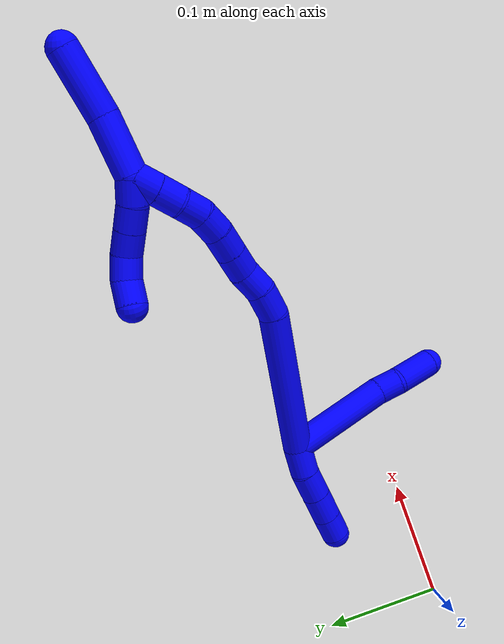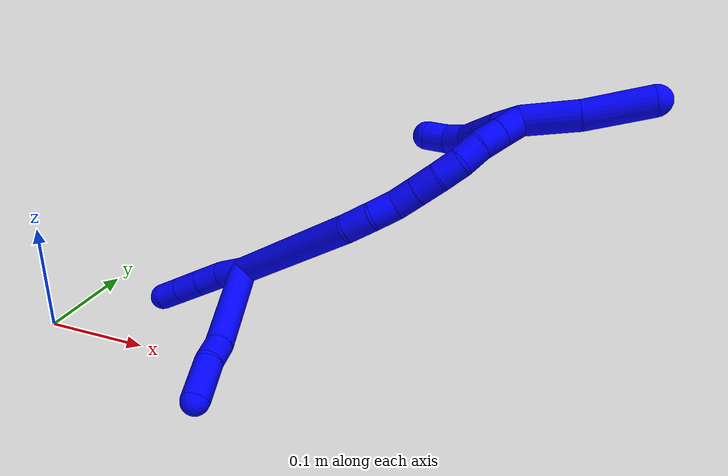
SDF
<sdf version="1.7">
 <world name="default">
  <model name="1">
   <static>0</static>
   <link name="1">
    <collision name="collision-cylinder-e_1_2_8">
     <pose>-0.027357 -0.036104 0.006701 1.38727 -0.640297 -0.537987</pose>
     <geometry><cylinder><radius>0.0125</radius><length>0.091581</length></cylinder></geometry>
     <surface>
      <friction><ode><mu>1.16</mu><mu2>1.16</mu2><slip1>0</slip1><slip2>0</slip2></ode></friction>
      <contact><ode><kp>1e+06</kp><kd>1</kd><max_vel>0</max_vel><min_depth>0.001</min_depth></ode></contact>
     </surface>
    </collision>
    <visual name="visual-cylinder-e_1_2_8">
     <pose>-0.027357 -0.036104 0.006701 1.38727 -0.640297 -0.537987</pose>
     <geometry><cylinder><radius>0.0125</radius><length>0.091581</length></cylinder></geometry>
     <material><ambient>0 0 1 1</ambient></material>
    </visual>
    <collision name="collision-cylinder-e_2_8_9">
     <pose>-0.062569 -0.07909 0.01493 1.3524 -0.839386 -0.687626</pose>
     <geometry><cylinder><radius>0.0125</radius><length>0.021111</length></cylinder></geometry>
     <surface>
      <friction><ode><mu>1.16</mu><mu2>1.16</mu2><slip1>0</slip1><slip2>0</slip2></ode></friction>
      <contact><ode><kp>1e+06</kp><kd>1</kd><max_vel>0</max_vel><min_depth>0.001</min_depth></ode></contact>
     </surface>
    </collision>
    <visual name="visual-cylinder-e_2_8_9">
     <pose>-0.062569 -0.07909 0.01493 1.3524 -0.839386 -0.687626</pose>
     <geometry><cylinder><radius>0.0125</radius><length>0.021111</length></cylinder></geometry>
     <material><ambient>0 0 1 1</ambient></material>
    </visual>
    <collision name="collision-cylinder-e_3_9_6">
     <pose>-0.080816 -0.10146 0.016842 1.54601 -0.590805 -0.577138</pose>
     <geometry><cylinder><radius>0.0125</radius><length>0.037308</length></cylinder></geometry>
     <surface>
      <friction><ode><mu>1.16</mu><mu2>1.16</mu2><slip1>0</slip1><slip2>0</slip2></ode></friction>
      <contact><ode><kp>1e+06</kp><kd>1</kd><max_vel>0</max_vel><min_depth>0.001</min_depth></ode></contact>
     </surface>
    </collision>
    <visual name="visual-cylinder-e_3_9_6">
     <pose>-0.080816 -0.10146 0.016842 1.54601 -0.590805 -0.577138</pose>
     <geometry><cylinder><radius>0.0125</radius><length>0.037308</length></cylinder></geometry>
     <material><ambient>0 0 1 1</ambient></material>
    </visual>
    <collision name="collision-cylinder-e_1_2_10">
     <pose>-0.002086 0.001764 -0.012606 -3.00256 -0.162398 1.72609</pose>
     <geometry><cylinder><radius>0.0125</radius><length>0.025798</length></cylinder></geometry>
     <surface>
      <friction><ode><mu>1.16</mu><mu2>1.16</mu2><slip1>0</slip1><slip2>0</slip2></ode></friction>
      <contact><ode><kp>1e+06</kp><kd>1</kd><max_vel>0</max_vel><min_depth>0.001</min_depth></ode></contact>
     </surface>
    </collision>
    <visual name="visual-cylinder-e_1_2_10">
     <pose>-0.002086 0.001764 -0.012606 -3.00256 -0.162398 1.72609</pose>
     <geometry><cylinder><radius>0.0125</radius><length>0.025798</length></cylinder></geometry>
     <material><ambient>0 0 1 1</ambient></material>
    </visual>
    <collision name="collision-cylinder-e_2_10_11">
     <pose>-0.007372 0.003135 -0.037738 3.11022 -0.250042 -2.89321</pose>
     <geometry><cylinder><radius>0.0125</radius><length>0.025868</length></cylinder></geometry>
     <surface>
      <friction><ode><mu>1.16</mu><mu2>1.16</mu2><slip1>0</slip1><slip2>0</slip2></ode></friction>
      <contact><ode><kp>1e+06</kp><kd>1</kd><max_vel>0</max_vel><min_depth>0.001</min_depth></ode></contact>
     </surface>
    </collision>
    <visual name="visual-cylinder-e_2_10_11">
     <pose>-0.007372 0.003135 -0.037738 3.11022 -0.250042 -2.89321</pose>
     <geometry><cylinder><radius>0.0125</radius><length>0.025868</length></cylinder></geometry>
     <material><ambient>0 0 1 1</ambient></material>
    </visual>
    <collision name="collision-cylinder-e_3_11_12">
     <pose>-0.013642 0.002304 -0.062602 3.10612 -0.243708 -2.85392</pose>
     <geometry><cylinder><radius>0.0125</radius><length>0.025444</length></cylinder></geometry>
     <surface>
      <friction><ode><mu>1.16</mu><mu2>1.16</mu2><slip1>0</slip1><slip2>0</slip2></ode></friction>
      <contact><ode><kp>1e+06</kp><kd>1</kd><max_vel>0</max_vel><min_depth>0.001</min_depth></ode></contact>
     </surface>
    </collision>
    <visual name="visual-cylinder-e_3_11_12">
     <pose>-0.013642 0.002304 -0.062602 3.10612 -0.243708 -2.85392</pose>
     <geometry><cylinder><radius>0.0125</radius><length>0.025444</length></cylinder></geometry>
     <material><ambient>0 0 1 1</ambient></material>
    </visual>
    <collision name="collision-cylinder-e_4_12_5">
     <pose>-0.019524 0.001511 -0.086029 3.10959 -0.24826 -2.88648</pose>
     <geometry><cylinder><radius>0.0125</radius><length>0.02289</length></cylinder></geometry>
     <surface>
      <friction><ode><mu>1.16</mu><mu2>1.16</mu2><slip1>0</slip1><slip2>0</slip2></ode></friction>
      <contact><ode><kp>1e+06</kp><kd>1</kd><max_vel>0</max_vel><min_depth>0.001</min_depth></ode></contact>
     </surface>
    </collision>
    <visual name="visual-cylinder-e_4_12_5">
     <pose>-0.019524 0.001511 -0.086029 3.10959 -0.24826 -2.88648</pose>
     <geometry><cylinder><radius>0.0125</radius><length>0.02289</length></cylinder></geometry>
     <material><ambient>0 0 1 1</ambient></material>
    </visual>
    <collision name="collision-cylinder-e_1_2_13">
     <pose>0.000268 -0.001428 0.066058 0.021621 0.004062 4.4e-05</pose>
     <geometry><cylinder><radius>0.0125</radius><length>0.132147</length></cylinder></geometry>
     <surface>
      <friction><ode><mu>1.16</mu><mu2>1.16</mu2><slip1>0</slip1><slip2>0</slip2></ode></friction>
      <contact><ode><kp>1e+06</kp><kd>1</kd><max_vel>0</max_vel><min_depth>0.001</min_depth></ode></contact>
     </surface>
    </collision>
    <visual name="visual-cylinder-e_1_2_13">
     <pose>0.000268 -0.001428 0.066058 0.021621 0.004062 4.4e-05</pose>
     <geometry><cylinder><radius>0.0125</radius><length>0.132147</length></cylinder></geometry>
     <material><ambient>0 0 1 1</ambient></material>
    </visual>
    <collision name="collision-cylinder-e_2_13_14">
     <pose>0.003563 -0.001447 0.143964 -0.118444 0.248339 -0.0148</pose>
     <geometry><cylinder><radius>0.0125</radius><length>0.024621</length></cylinder></geometry>
     <surface>
      <friction><ode><mu>1.16</mu><mu2>1.16</mu2><slip1>0</slip1><slip2>0</slip2></ode></friction>
      <contact><ode><kp>1e+06</kp><kd>1</kd><max_vel>0</max_vel><min_depth>0.001</min_depth></ode></contact>
     </surface>
    </collision>
    <visual name="visual-cylinder-e_2_13_14">
     <pose>0.003563 -0.001447 0.143964 -0.118444 0.248339 -0.0148</pose>
     <geometry><cylinder><radius>0.0125</radius><length>0.024621</length></cylinder></geometry>
     <material><ambient>0 0 1 1</ambient></material>
    </visual>
    <collision name="collision-cylinder-e_3_14_15">
     <pose>0.011496 0.002131 0.165071 -0.230009 0.476494 -0.056093</pose>
     <geometry><cylinder><radius>0.0125</radius><length>0.021399</length></cylinder></geometry>
     <surface>
      <friction><ode><mu>1.16</mu><mu2>1.16</mu2><slip1>0</slip1><slip2>0</slip2></ode></friction>
      <contact><ode><kp>1e+06</kp><kd>1</kd><max_vel>0</max_vel><min_depth>0.001</min_depth></ode></contact>
     </surface>
    </collision>
    <visual name="visual-cylinder-e_3_14_15">
     <pose>0.011496 0.002131 0.165071 -0.230009 0.476494 -0.056093</pose>
     <geometry><cylinder><radius>0.0125</radius><length>0.021399</length></cylinder></geometry>
     <material><ambient>0 0 1 1</ambient></material>
    </visual>
    <collision name="collision-cylinder-e_4_15_16">
     <pose>0.018818 0.006803 0.184102 -0.250842 0.234924 -0.029755</pose>
     <geometry><cylinder><radius>0.0125</radius><length>0.020747</length></cylinder></geometry>
     <surface>
      <friction><ode><mu>1.16</mu><mu2>1.16</mu2><slip1>0</slip1><slip2>0</slip2></ode></friction>
      <contact><ode><kp>1e+06</kp><kd>1</kd><max_vel>0</max_vel><min_depth>0.001</min_depth></ode></contact>
     </surface>
    </collision>
    <visual name="visual-cylinder-e_4_15_16">
     <pose>0.018818 0.006803 0.184102 -0.250842 0.234924 -0.029755</pose>
     <geometry><cylinder><radius>0.0125</radius><length>0.020747</length></cylinder></geometry>
     <material><ambient>0 0 1 1</ambient></material>
    </visual>
    <collision name="collision-cylinder-e_5_16_17">
     <pose>0.023663 0.011866 0.203685 -0.255135 0.235254 -0.030312</pose>
     <geometry><cylinder><radius>0.0125</radius><length>0.020851</length></cylinder></geometry>
     <surface>
      <friction><ode><mu>1.16</mu><mu2>1.16</mu2><slip1>0</slip1><slip2>0</slip2></ode></friction>
      <contact><ode><kp>1e+06</kp><kd>1</kd><max_vel>0</max_vel><min_depth>0.001</min_depth></ode></contact>
     </surface>
    </collision>
    <visual name="visual-cylinder-e_5_16_17">
     <pose>0.023663 0.011866 0.203685 -0.255135 0.235254 -0.030312</pose>
     <geometry><cylinder><radius>0.0125</radius><length>0.020851</length></cylinder></geometry>
     <material><ambient>0 0 1 1</ambient></material>
    </visual>
    <collision name="collision-cylinder-e_6_17_18">
     <pose>0.02971 0.017636 0.222339 -0.348317 0.366944 -0.065272</pose>
     <geometry><cylinder><radius>0.0125</radius><length>0.020161</length></cylinder></geometry>
     <surface>
      <friction><ode><mu>1.16</mu><mu2>1.16</mu2><slip1>0</slip1><slip2>0</slip2></ode></friction>
      <contact><ode><kp>1e+06</kp><kd>1</kd><max_vel>0</max_vel><min_depth>0.001</min_depth></ode></contact>
     </surface>
    </collision>
    <visual name="visual-cylinder-e_6_17_18">
     <pose>0.02971 0.017636 0.222339 -0.348317 0.366944 -0.065272</pose>
     <geometry><cylinder><radius>0.0125</radius><length>0.020161</length></cylinder></geometry>
     <material><ambient>0 0 1 1</ambient></material>
    </visual>
    <collision name="collision-cylinder-e_7_18_19">
     <pose>0.038358 0.025764 0.238324 -0.603053 0.525936 -0.167059</pose>
     <geometry><cylinder><radius>0.0125</radius><length>0.020047</length></cylinder></geometry>
     <surface>
      <friction><ode><mu>1.16</mu><mu2>1.16</mu2><slip1>0</slip1><slip2>0</slip2></ode></friction>
      <contact><ode><kp>1e+06</kp><kd>1</kd><max_vel>0</max_vel><min_depth>0.001</min_depth></ode></contact>
     </surface>
    </collision>
    <visual name="visual-cylinder-e_7_18_19">
     <pose>0.038358 0.025764 0.238324 -0.603053 0.525936 -0.167059</pose>
     <geometry><cylinder><radius>0.0125</radius><length>0.020047</length></cylinder></geometry>
     <material><ambient>0 0 1 1</ambient></material>
    </visual>
    <collision name="collision-cylinder-e_8_19_20">
     <pose>0.04972 0.034389 0.252262 -0.499262 0.685272 -0.181385</pose>
     <geometry><cylinder><radius>0.0125</radius><length>0.020003</length></cylinder></geometry>
     <surface>
      <friction><ode><mu>1.16</mu><mu2>1.16</mu2><slip1>0</slip1><slip2>0</slip2></ode></friction>
      <contact><ode><kp>1e+06</kp><kd>1</kd><max_vel>0</max_vel><min_depth>0.001</min_depth></ode></contact>
     </surface>
    </collision>
    <visual name="visual-cylinder-e_8_19_20">
     <pose>0.04972 0.034389 0.252262 -0.499262 0.685272 -0.181385</pose>
     <geometry><cylinder><radius>0.0125</radius><length>0.020003</length></cylinder></geometry>
     <material><ambient>0 0 1 1</ambient></material>
    </visual>
    <collision name="collision-cylinder-e_9_20_1">
     <pose>0.062547 0.041728 0.265756 -0.496979 0.706198 -0.186482</pose>
     <geometry><cylinder><radius>0.0125</radius><length>0.020022</length></cylinder></geometry>
     <surface>
      <friction><ode><mu>1.16</mu><mu2>1.16</mu2><slip1>0</slip1><slip2>0</slip2></ode></friction>
      <contact><ode><kp>1e+06</kp><kd>1</kd><max_vel>0</max_vel><min_depth>0.001</min_depth></ode></contact>
     </surface>
    </collision>
    <visual name="visual-cylinder-e_9_20_1">
     <pose>0.062547 0.041728 0.265756 -0.496979 0.706198 -0.186482</pose>
     <geometry><cylinder><radius>0.0125</radius><length>0.020022</length></cylinder></geometry>
     <material><ambient>0 0 1 1</ambient></material>
    </visual>
    <collision name="collision-cylinder-e_1_1_21">
     <pose>0.077744 0.040009 0.293123 0.253266 0.386901 0.049871</pose>
     <geometry><cylinder><radius>0.0125</radius><length>0.046115</length></cylinder></geometry>
     <surface>
      <friction><ode><mu>1.16</mu><mu2>1.16</mu2><slip1>0</slip1><slip2>0</slip2></ode></friction>
      <contact><ode><kp>1e+06</kp><kd>1</kd><max_vel>0</max_vel><min_depth>0.001</min_depth></ode></contact>
     </surface>
    </collision>
    <visual name="visual-cylinder-e_1_1_21">
     <pose>0.077744 0.040009 0.293123 0.253266 0.386901 0.049871</pose>
     <geometry><cylinder><radius>0.0125</radius><length>0.046115</length></cylinder></geometry>
     <material><ambient>0 0 1 1</ambient></material>
    </visual>
    <collision name="collision-cylinder-e_2_21_4">
     <pose>0.097573 0.031846 0.33817 0.11488 0.425846 0.024863</pose>
     <geometry><cylinder><radius>0.0125</radius><length>0.053885</length></cylinder></geometry>
     <surface>
      <friction><ode><mu>1.16</mu><mu2>1.16</mu2><slip1>0</slip1><slip2>0</slip2></ode></friction>
      <contact><ode><kp>1e+06</kp><kd>1</kd><max_vel>0</max_vel><min_depth>0.001</min_depth></ode></contact>
     </surface>
    </collision>
    <visual name="visual-cylinder-e_2_21_4">
     <pose>0.097573 0.031846 0.33817 0.11488 0.425846 0.024863</pose>
     <geometry><cylinder><radius>0.0125</radius><length>0.053885</length></cylinder></geometry>
     <material><ambient>0 0 1 1</ambient></material>
    </visual>
    <collision name="collision-cylinder-e_1_1_22">
     <pose>0.070243 0.047265 0.262708 -2.94839 0.120201 -1.11139</pose>
     <geometry><cylinder><radius>0.0125</radius><length>0.02</length></cylinder></geometry>
     <surface>
      <friction><ode><mu>1.16</mu><mu2>1.16</mu2><slip1>0</slip1><slip2>0</slip2></ode></friction>
      <contact><ode><kp>1e+06</kp><kd>1</kd><max_vel>0</max_vel><min_depth>0.001</min_depth></ode></contact>
     </surface>
    </collision>
    <visual name="visual-cylinder-e_1_1_22">
     <pose>0.070243 0.047265 0.262708 -2.94839 0.120201 -1.11139</pose>
     <geometry><cylinder><radius>0.0125</radius><length>0.02</length></cylinder></geometry>
     <material><ambient>0 0 1 1</ambient></material>
    </visual>
    <collision name="collision-cylinder-e_2_22_23">
     <pose>0.074361 0.050989 0.243575 -2.9504 0.296207 -1.99914</pose>
     <geometry><cylinder><radius>0.0125</radius><length>0.02</length></cylinder></geometry>
     <surface>
      <friction><ode><mu>1.16</mu><mu2>1.16</mu2><slip1>0</slip1><slip2>0</slip2></ode></friction>
      <contact><ode><kp>1e+06</kp><kd>1</kd><max_vel>0</max_vel><min_depth>0.001</min_depth></ode></contact>
     </surface>
    </collision>
    <visual name="visual-cylinder-e_2_22_23">
     <pose>0.074361 0.050989 0.243575 -2.9504 0.296207 -1.99914</pose>
     <geometry><cylinder><radius>0.0125</radius><length>0.02</length></cylinder></geometry>
     <material><ambient>0 0 1 1</ambient></material>
    </visual>
    <collision name="collision-cylinder-e_3_23_24">
     <pose>0.080249 0.054622 0.22481 -2.95027 0.301471 -2.01471</pose>
     <geometry><cylinder><radius>0.0125</radius><length>0.02</length></cylinder></geometry>
     <surface>
      <friction><ode><mu>1.16</mu><mu2>1.16</mu2><slip1>0</slip1><slip2>0</slip2></ode></friction>
      <contact><ode><kp>1e+06</kp><kd>1</kd><max_vel>0</max_vel><min_depth>0.001</min_depth></ode></contact>
     </surface>
    </collision>
    <visual name="visual-cylinder-e_3_23_24">
     <pose>0.080249 0.054622 0.22481 -2.95027 0.301471 -2.01471</pose>
     <geometry><cylinder><radius>0.0125</radius><length>0.02</length></cylinder></geometry>
     <material><ambient>0 0 1 1</ambient></material>
    </visual>
    <collision name="collision-cylinder-e_4_24_25">
     <pose>0.083628 0.060484 0.206299 -2.72469 0.040989 -0.193202</pose>
     <geometry><cylinder><radius>0.0125</radius><length>0.02</length></cylinder></geometry>
     <surface>
      <friction><ode><mu>1.16</mu><mu2>1.16</mu2><slip1>0</slip1><slip2>0</slip2></ode></friction>
      <contact><ode><kp>1e+06</kp><kd>1</kd><max_vel>0</max_vel><min_depth>0.001</min_depth></ode></contact>
     </surface>
    </collision>
    <visual name="visual-cylinder-e_4_24_25">
     <pose>0.083628 0.060484 0.206299 -2.72469 0.040989 -0.193202</pose>
     <geometry><cylinder><radius>0.0125</radius><length>0.02</length></cylinder></geometry>
     <material><ambient>0 0 1 1</ambient></material>
    </visual>
    <collision name="collision-cylinder-e_5_25_3">
     <pose>0.081354 0.069393 0.188848 -2.61242 -0.271746 0.934641</pose>
     <geometry><cylinder><radius>0.0125</radius><length>0.02</length></cylinder></geometry>
     <surface>
      <friction><ode><mu>1.16</mu><mu2>1.16</mu2><slip1>0</slip1><slip2>0</slip2></ode></friction>
      <contact><ode><kp>1e+06</kp><kd>1</kd><max_vel>0</max_vel><min_depth>0.001</min_depth></ode></contact>
     </surface>
    </collision>
    <visual name="visual-cylinder-e_5_25_3">
     <pose>0.081354 0.069393 0.188848 -2.61242 -0.271746 0.934641</pose>
     <geometry><cylinder><radius>0.0125</radius><length>0.02</length></cylinder></geometry>
     <material><ambient>0 0 1 1</ambient></material>
    </visual>
    <collision name="collision-sphere-3">
     <pose>0.07867 0.074256 0.180532 0 -0 0</pose>
     <geometry><sphere><radius>0.0125</radius></sphere></geometry>
     <surface>
      <friction><ode><mu>1.16</mu><mu2>1.16</mu2><slip1>0</slip1><slip2>0</slip2></ode></friction>
      <contact><ode><kp>1e+06</kp><kd>1</kd><max_vel>0</max_vel><min_depth>0.001</min_depth></ode></contact>
     </surface>
    </collision>
    <visual name="visual-sphere-3">
     <pose>0.07867 0.074256 0.180532 0 -0 0</pose>
     <geometry><sphere><radius>0.0125</radius></sphere></geometry>
     <material><ambient>0 0 1 1</ambient></material>
    </visual>
    <collision name="collision-sphere-25">
     <pose>0.084038 0.06453 0.197163 0 -0 0</pose>
     <geometry><sphere><radius>0.0125</radius></sphere></geometry>
     <surface>
      <friction><ode><mu>1.16</mu><mu2>1.16</mu2><slip1>0</slip1><slip2>0</slip2></ode></friction>
      <contact><ode><kp>1e+06</kp><kd>1</kd><max_vel>0</max_vel><min_depth>0.001</min_depth></ode></contact>
     </surface>
    </collision>
    <visual name="visual-sphere-25">
     <pose>0.084038 0.06453 0.197163 0 -0 0</pose>
     <geometry><sphere><radius>0.0125</radius></sphere></geometry>
     <material><ambient>0 0 1 1</ambient></material>
    </visual>
    <collision name="collision-sphere-24">
     <pose>0.083218 0.056438 0.215435 0 -0 0</pose>
     <geometry><sphere><radius>0.0125</radius></sphere></geometry>
     <surface>
      <friction><ode><mu>1.16</mu><mu2>1.16</mu2><slip1>0</slip1><slip2>0</slip2></ode></friction>
      <contact><ode><kp>1e+06</kp><kd>1</kd><max_vel>0</max_vel><min_depth>0.001</min_depth></ode></contact>
     </surface>
    </collision>
    <visual name="visual-sphere-24">
     <pose>0.083218 0.056438 0.215435 0 -0 0</pose>
     <geometry><sphere><radius>0.0125</radius></sphere></geometry>
     <material><ambient>0 0 1 1</ambient></material>
    </visual>
    <collision name="collision-sphere-23">
     <pose>0.07728 0.052806 0.234185 0 -0 0</pose>
     <geometry><sphere><radius>0.0125</radius></sphere></geometry>
     <surface>
      <friction><ode><mu>1.16</mu><mu2>1.16</mu2><slip1>0</slip1><slip2>0</slip2></ode></friction>
      <contact><ode><kp>1e+06</kp><kd>1</kd><max_vel>0</max_vel><min_depth>0.001</min_depth></ode></contact>
     </surface>
    </collision>
    <visual name="visual-sphere-23">
     <pose>0.07728 0.052806 0.234185 0 -0 0</pose>
     <geometry><sphere><radius>0.0125</radius></sphere></geometry>
     <material><ambient>0 0 1 1</ambient></material>
    </visual>
    <collision name="collision-sphere-22">
     <pose>0.071442 0.049171 0.252965 0 -0 0</pose>
     <geometry><sphere><radius>0.0125</radius></sphere></geometry>
     <surface>
      <friction><ode><mu>1.16</mu><mu2>1.16</mu2><slip1>0</slip1><slip2>0</slip2></ode></friction>
      <contact><ode><kp>1e+06</kp><kd>1</kd><max_vel>0</max_vel><min_depth>0.001</min_depth></ode></contact>
     </surface>
    </collision>
    <visual name="visual-sphere-22">
     <pose>0.071442 0.049171 0.252965 0 -0 0</pose>
     <geometry><sphere><radius>0.0125</radius></sphere></geometry>
     <material><ambient>0 0 1 1</ambient></material>
    </visual>
    <collision name="collision-sphere-4">
     <pose>0.108703 0.029033 0.362544 0 -0 0</pose>
     <geometry><sphere><radius>0.0125</radius></sphere></geometry>
     <surface>
      <friction><ode><mu>1.16</mu><mu2>1.16</mu2><slip1>0</slip1><slip2>0</slip2></ode></friction>
      <contact><ode><kp>1e+06</kp><kd>1</kd><max_vel>0</max_vel><min_depth>0.001</min_depth></ode></contact>
     </surface>
    </collision>
    <visual name="visual-sphere-4">
     <pose>0.108703 0.029033 0.362544 0 -0 0</pose>
     <geometry><sphere><radius>0.0125</radius></sphere></geometry>
     <material><ambient>0 0 1 1</ambient></material>
    </visual>
    <collision name="collision-sphere-21">
     <pose>0.086444 0.034658 0.313795 0 -0 0</pose>
     <geometry><sphere><radius>0.0125</radius></sphere></geometry>
     <surface>
      <friction><ode><mu>1.16</mu><mu2>1.16</mu2><slip1>0</slip1><slip2>0</slip2></ode></friction>
      <contact><ode><kp>1e+06</kp><kd>1</kd><max_vel>0</max_vel><min_depth>0.001</min_depth></ode></contact>
     </surface>
    </collision>
    <visual name="visual-sphere-21">
     <pose>0.086444 0.034658 0.313795 0 -0 0</pose>
     <geometry><sphere><radius>0.0125</radius></sphere></geometry>
     <material><ambient>0 0 1 1</ambient></material>
    </visual>
    <collision name="collision-sphere-1">
     <pose>0.069044 0.045359 0.272451 0 -0 0</pose>
     <geometry><sphere><radius>0.0125</radius></sphere></geometry>
     <surface>
      <friction><ode><mu>1.16</mu><mu2>1.16</mu2><slip1>0</slip1><slip2>0</slip2></ode></friction>
      <contact><ode><kp>1e+06</kp><kd>1</kd><max_vel>0</max_vel><min_depth>0.001</min_depth></ode></contact>
     </surface>
    </collision>
    <visual name="visual-sphere-1">
     <pose>0.069044 0.045359 0.272451 0 -0 0</pose>
     <geometry><sphere><radius>0.0125</radius></sphere></geometry>
     <material><ambient>0 0 1 1</ambient></material>
    </visual>
    <collision name="collision-sphere-11">
     <pose>-0.010572 0.002742 -0.050264 0 -0 0</pose>
     <geometry><sphere><radius>0.0125</radius></sphere></geometry>
     <surface>
      <friction><ode><mu>1.16</mu><mu2>1.16</mu2><slip1>0</slip1><slip2>0</slip2></ode></friction>
      <contact><ode><kp>1e+06</kp><kd>1</kd><max_vel>0</max_vel><min_depth>0.001</min_depth></ode></contact>
     </surface>
    </collision>
    <visual name="visual-sphere-11">
     <pose>-0.010572 0.002742 -0.050264 0 -0 0</pose>
     <geometry><sphere><radius>0.0125</radius></sphere></geometry>
     <material><ambient>0 0 1 1</ambient></material>
    </visual>
    <collision name="collision-sphere-10">
     <pose>-0.004171 0.003528 -0.025213 0 -0 0</pose>
     <geometry><sphere><radius>0.0125</radius></sphere></geometry>
     <surface>
      <friction><ode><mu>1.16</mu><mu2>1.16</mu2><slip1>0</slip1><slip2>0</slip2></ode></friction>
      <contact><ode><kp>1e+06</kp><kd>1</kd><max_vel>0</max_vel><min_depth>0.001</min_depth></ode></contact>
     </surface>
    </collision>
    <visual name="visual-sphere-10">
     <pose>-0.004171 0.003528 -0.025213 0 -0 0</pose>
     <geometry><sphere><radius>0.0125</radius></sphere></geometry>
     <material><ambient>0 0 1 1</ambient></material>
    </visual>
    <collision name="collision-sphere-6">
     <pose>-0.091207 -0.116947 0.017226 0 -0 0</pose>
     <geometry><sphere><radius>0.0125</radius></sphere></geometry>
     <surface>
      <friction><ode><mu>1.16</mu><mu2>1.16</mu2><slip1>0</slip1><slip2>0</slip2></ode></friction>
      <contact><ode><kp>1e+06</kp><kd>1</kd><max_vel>0</max_vel><min_depth>0.001</min_depth></ode></contact>
     </surface>
    </collision>
    <visual name="visual-sphere-6">
     <pose>-0.091207 -0.116947 0.017226 0 -0 0</pose>
     <geometry><sphere><radius>0.0125</radius></sphere></geometry>
     <material><ambient>0 0 1 1</ambient></material>
    </visual>
    <collision name="collision-sphere-9">
     <pose>-0.070425 -0.085973 0.016458 0 -0 0</pose>
     <geometry><sphere><radius>0.0125</radius></sphere></geometry>
     <surface>
      <friction><ode><mu>1.16</mu><mu2>1.16</mu2><slip1>0</slip1><slip2>0</slip2></ode></friction>
      <contact><ode><kp>1e+06</kp><kd>1</kd><max_vel>0</max_vel><min_depth>0.001</min_depth></ode></contact>
     </surface>
    </collision>
    <visual name="visual-sphere-9">
     <pose>-0.070425 -0.085973 0.016458 0 -0 0</pose>
     <geometry><sphere><radius>0.0125</radius></sphere></geometry>
     <material><ambient>0 0 1 1</ambient></material>
    </visual>
    <collision name="collision-sphere-2">
     <geometry><sphere><radius>0.0125</radius></sphere></geometry>
     <surface>
      <friction><ode><mu>1.16</mu><mu2>1.16</mu2><slip1>0</slip1><slip2>0</slip2></ode></friction>
      <contact><ode><kp>1e+06</kp><kd>1</kd><max_vel>0</max_vel><min_depth>0.001</min_depth></ode></contact>
     </surface>
    </collision>
    <visual name="visual-sphere-2">
     <geometry><sphere><radius>0.0125</radius></sphere></geometry>
     <material><ambient>0 0 1 1</ambient></material>
    </visual>
    <collision name="collision-sphere-19">
     <pose>0.043391 0.030681 0.245464 0 -0 0</pose>
     <geometry><sphere><radius>0.0125</radius></sphere></geometry>
     <surface>
      <friction><ode><mu>1.16</mu><mu2>1.16</mu2><slip1>0</slip1><slip2>0</slip2></ode></friction>
      <contact><ode><kp>1e+06</kp><kd>1</kd><max_vel>0</max_vel><min_depth>0.001</min_depth></ode></contact>
     </surface>
    </collision>
    <visual name="visual-sphere-19">
     <pose>0.043391 0.030681 0.245464 0 -0 0</pose>
     <geometry><sphere><radius>0.0125</radius></sphere></geometry>
     <material><ambient>0 0 1 1</ambient></material>
    </visual>
    <collision name="collision-sphere-8">
     <pose>-0.054714 -0.072207 0.013403 0 -0 0</pose>
     <geometry><sphere><radius>0.0125</radius></sphere></geometry>
     <surface>
      <friction><ode><mu>1.16</mu><mu2>1.16</mu2><slip1>0</slip1><slip2>0</slip2></ode></friction>
      <contact><ode><kp>1e+06</kp><kd>1</kd><max_vel>0</max_vel><min_depth>0.001</min_depth></ode></contact>
     </surface>
    </collision>
    <visual name="visual-sphere-8">
     <pose>-0.054714 -0.072207 0.013403 0 -0 0</pose>
     <geometry><sphere><radius>0.0125</radius></sphere></geometry>
     <material><ambient>0 0 1 1</ambient></material>
    </visual>
    <collision name="collision-sphere-12">
     <pose>-0.016712 0.001866 -0.074941 0 -0 0</pose>
     <geometry><sphere><radius>0.0125</radius></sphere></geometry>
     <surface>
      <friction><ode><mu>1.16</mu><mu2>1.16</mu2><slip1>0</slip1><slip2>0</slip2></ode></friction>
      <contact><ode><kp>1e+06</kp><kd>1</kd><max_vel>0</max_vel><min_depth>0.001</min_depth></ode></contact>
     </surface>
    </collision>
    <visual name="visual-sphere-12">
     <pose>-0.016712 0.001866 -0.074941 0 -0 0</pose>
     <geometry><sphere><radius>0.0125</radius></sphere></geometry>
     <material><ambient>0 0 1 1</ambient></material>
    </visual>
    <collision name="collision-sphere-5">
     <pose>-0.022336 0.001156 -0.097118 0 -0 0</pose>
     <geometry><sphere><radius>0.0125</radius></sphere></geometry>
     <surface>
      <friction><ode><mu>1.16</mu><mu2>1.16</mu2><slip1>0</slip1><slip2>0</slip2></ode></friction>
      <contact><ode><kp>1e+06</kp><kd>1</kd><max_vel>0</max_vel><min_depth>0.001</min_depth></ode></contact>
     </surface>
    </collision>
    <visual name="visual-sphere-5">
     <pose>-0.022336 0.001156 -0.097118 0 -0 0</pose>
     <geometry><sphere><radius>0.0125</radius></sphere></geometry>
     <material><ambient>0 0 1 1</ambient></material>
    </visual>
    <collision name="collision-sphere-13">
     <pose>0.000537 -0.002857 0.132115 0 -0 0</pose>
     <geometry><sphere><radius>0.0125</radius></sphere></geometry>
     <surface>
      <friction><ode><mu>1.16</mu><mu2>1.16</mu2><slip1>0</slip1><slip2>0</slip2></ode></friction>
      <contact><ode><kp>1e+06</kp><kd>1</kd><max_vel>0</max_vel><min_depth>0.001</min_depth></ode></contact>
     </surface>
    </collision>
    <visual name="visual-sphere-13">
     <pose>0.000537 -0.002857 0.132115 0 -0 0</pose>
     <geometry><sphere><radius>0.0125</radius></sphere></geometry>
     <material><ambient>0 0 1 1</ambient></material>
    </visual>
    <collision name="collision-sphere-14">
     <pose>0.006589 -3.7e-05 0.155814 0 -0 0</pose>
     <geometry><sphere><radius>0.0125</radius></sphere></geometry>
     <surface>
      <friction><ode><mu>1.16</mu><mu2>1.16</mu2><slip1>0</slip1><slip2>0</slip2></ode></friction>
      <contact><ode><kp>1e+06</kp><kd>1</kd><max_vel>0</max_vel><min_depth>0.001</min_depth></ode></contact>
     </surface>
    </collision>
    <visual name="visual-sphere-14">
     <pose>0.006589 -3.7e-05 0.155814 0 -0 0</pose>
     <geometry><sphere><radius>0.0125</radius></sphere></geometry>
     <material><ambient>0 0 1 1</ambient></material>
    </visual>
    <collision name="collision-sphere-15">
     <pose>0.016404 0.004299 0.174329 0 -0 0</pose>
     <geometry><sphere><radius>0.0125</radius></sphere></geometry>
     <surface>
      <friction><ode><mu>1.16</mu><mu2>1.16</mu2><slip1>0</slip1><slip2>0</slip2></ode></friction>
      <contact><ode><kp>1e+06</kp><kd>1</kd><max_vel>0</max_vel><min_depth>0.001</min_depth></ode></contact>
     </surface>
    </collision>
    <visual name="visual-sphere-15">
     <pose>0.016404 0.004299 0.174329 0 -0 0</pose>
     <geometry><sphere><radius>0.0125</radius></sphere></geometry>
     <material><ambient>0 0 1 1</ambient></material>
    </visual>
    <collision name="collision-sphere-16">
     <pose>0.021233 0.009307 0.193874 0 -0 0</pose>
     <geometry><sphere><radius>0.0125</radius></sphere></geometry>
     <surface>
      <friction><ode><mu>1.16</mu><mu2>1.16</mu2><slip1>0</slip1><slip2>0</slip2></ode></friction>
      <contact><ode><kp>1e+06</kp><kd>1</kd><max_vel>0</max_vel><min_depth>0.001</min_depth></ode></contact>
     </surface>
    </collision>
    <visual name="visual-sphere-16">
     <pose>0.021233 0.009307 0.193874 0 -0 0</pose>
     <geometry><sphere><radius>0.0125</radius></sphere></geometry>
     <material><ambient>0 0 1 1</ambient></material>
    </visual>
    <collision name="collision-sphere-17">
     <pose>0.026093 0.014424 0.213495 0 -0 0</pose>
     <geometry><sphere><radius>0.0125</radius></sphere></geometry>
     <surface>
      <friction><ode><mu>1.16</mu><mu2>1.16</mu2><slip1>0</slip1><slip2>0</slip2></ode></friction>
      <contact><ode><kp>1e+06</kp><kd>1</kd><max_vel>0</max_vel><min_depth>0.001</min_depth></ode></contact>
     </surface>
    </collision>
    <visual name="visual-sphere-17">
     <pose>0.026093 0.014424 0.213495 0 -0 0</pose>
     <geometry><sphere><radius>0.0125</radius></sphere></geometry>
     <material><ambient>0 0 1 1</ambient></material>
    </visual>
    <collision name="collision-sphere-18">
     <pose>0.033326 0.020848 0.231184 0 -0 0</pose>
     <geometry><sphere><radius>0.0125</radius></sphere></geometry>
     <surface>
      <friction><ode><mu>1.16</mu><mu2>1.16</mu2><slip1>0</slip1><slip2>0</slip2></ode></friction>
      <contact><ode><kp>1e+06</kp><kd>1</kd><max_vel>0</max_vel><min_depth>0.001</min_depth></ode></contact>
     </surface>
    </collision>
    <visual name="visual-sphere-18">
     <pose>0.033326 0.020848 0.231184 0 -0 0</pose>
     <geometry><sphere><radius>0.0125</radius></sphere></geometry>
     <material><ambient>0 0 1 1</ambient></material>
    </visual>
    <collision name="collision-sphere-20">
     <pose>0.05605 0.038096 0.259061 0 -0 0</pose>
     <geometry><sphere><radius>0.0125</radius></sphere></geometry>
     <surface>
      <friction><ode><mu>1.16</mu><mu2>1.16</mu2><slip1>0</slip1><slip2>0</slip2></ode></friction>
      <contact><ode><kp>1e+06</kp><kd>1</kd><max_vel>0</max_vel><min_depth>0.001</min_depth></ode></contact>
     </surface>
    </collision>
    <visual name="visual-sphere-20">
     <pose>0.05605 0.038096 0.259061 0 -0 0</pose>
     <geometry><sphere><radius>0.0125</radius></sphere></geometry>
     <material><ambient>0 0 1 1</ambient></material>
    </visual>
    <inertial>
     <pose>0.01817 0.004373 0.125945 0 -0 0</pose>
     <mass>0.75</mass>
     <inertia>
      <ixx>0.000245</ixx>
      <ixy>0</ixy>
      <ixz>0</ixz>
      <iyy>0.000236</iyy>
      <iyz>0</iyz>
      <izz>0.000107</izz>
     </inertia>
    </inertial>
   </link>
   <pose>0.169969 0.074807 0.056629 0.938002 0.37983 1.15758</pose>
  </model>
 </world>
</sdf>
